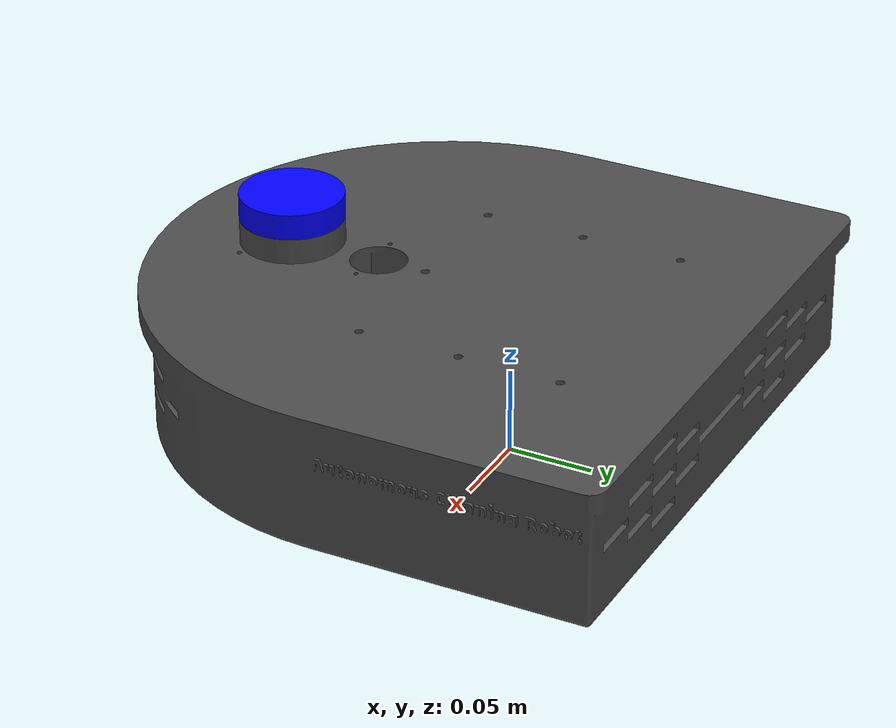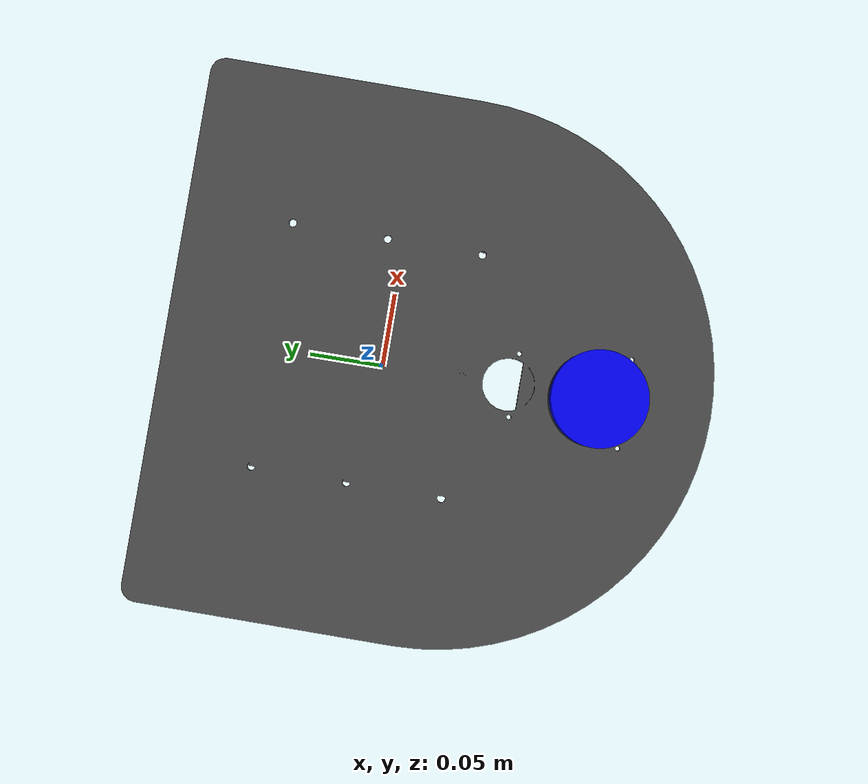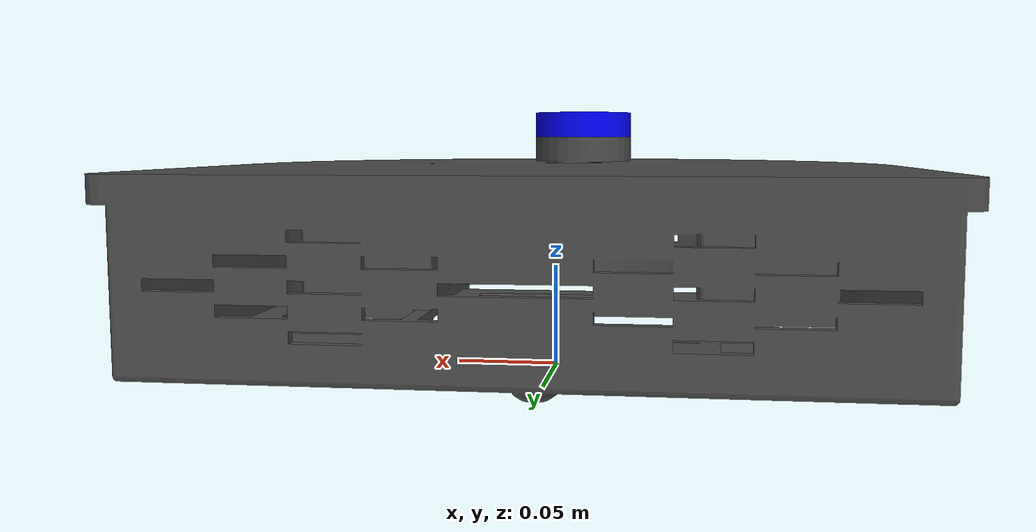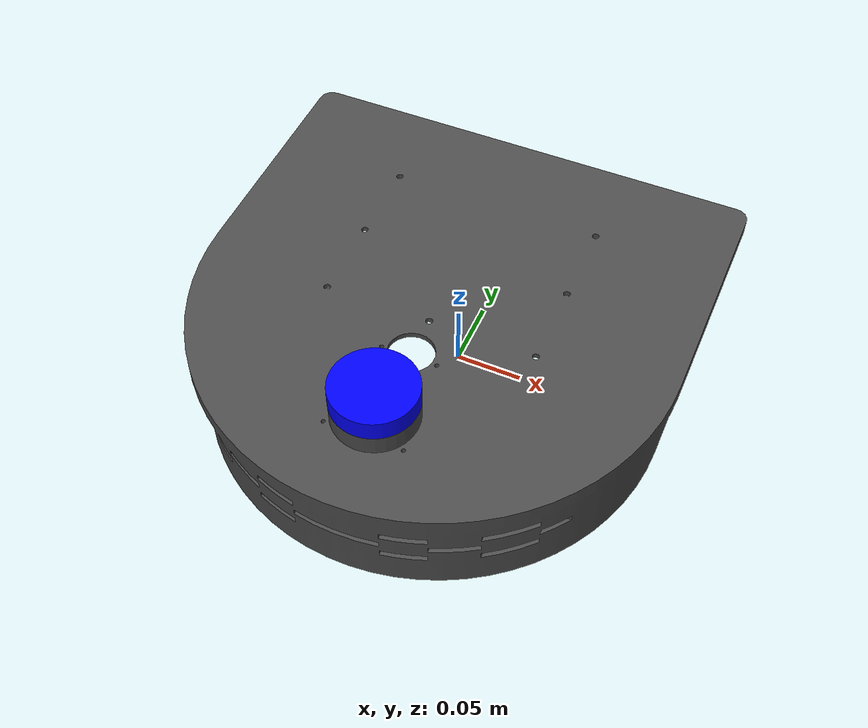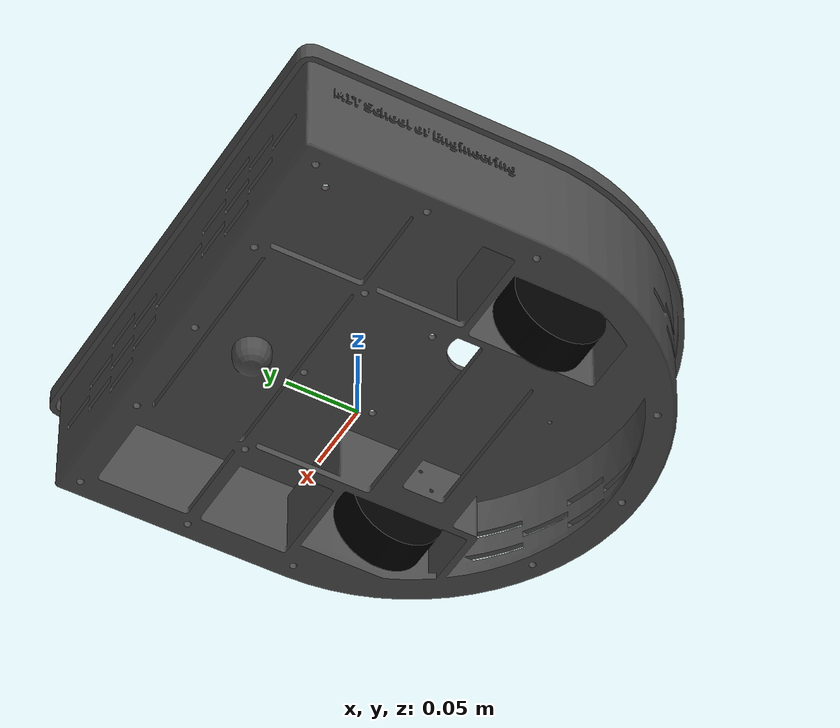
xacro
<?xml version="1.0" ?>
<robot name="mybot" xmlns:xacro="http://www.ros.org/wiki/xacro">

<xacro:property name="wheel_separation" value="0.20"/>
<xacro:property name="wheel_radius" value="0.032"/>

<xacro:include filename="$(find mybot_gazebo)/gazebo/mybot.plugins.xacro"/>
<xacro:include filename="$(find mybot_description)/urdf/materials.xacro" />
<xacro:include filename="$(find mybot_description)/urdf/mybot.trans" />
<xacro:include filename="$(find mybot_gazebo)/gazebo/mybot.gazebo" />

<link name="base_link">
  <inertial>
    <origin xyz="-2.9883252498712716e-05 -0.02466687497211163 0.0668106029991552" rpy="0 0 0"/>
    <mass value="1.2234779002641047"/>
    <inertia ixx="0.01447" iyy="0.014849" izz="0.026597" ixy="-3e-06" iyz="0.000327" ixz="-0.0"/>
  </inertial>
  <visual>
    <origin xyz="0 0 0" rpy="0 0 0"/>
    <geometry>
      <mesh filename="file://$(find mybot_description)/meshes/base_link.stl" scale="0.001 0.001 0.001"/>
    </geometry>
    <material name="grey"/>
  </visual>
  <collision>
    <origin xyz="0 0 0" rpy="0 0 0"/>
    <geometry>
      <mesh filename="file://$(find mybot_description)/meshes/base_link.stl" scale="0.001 0.001 0.001"/>
    </geometry>
  </collision>
</link>

  <joint name="base_footprint_joint" type="fixed">
        <parent link="base_link"/>
        <child link="base_footprint"/>
        <origin xyz="0 0 0" rpy="0 0 0"/>
    </joint>

    <link name="base_footprint">
    </link>

<link name="lidar">
  <inertial>
    <origin xyz="4.930463915165067e-07 2.344220053906998e-07 0.007500000000000007" rpy="0 0 0"/>
    <mass value="0.33293028146417825"/>
    <inertia ixx="8.1e-05" iyy="8.1e-05" izz="0.00015" ixy="0.0" iyz="-0.0" ixz="-0.0"/>
  </inertial>
  <visual>
    <origin xyz="7e-05 0.137825 -0.115" rpy="0 0 0"/>
    <geometry>
      <mesh filename="file://$(find mybot_description)/meshes/lidar_link_1.stl" scale="0.001 0.001 0.001"/>
    </geometry>
    <material name="blue"/>
  </visual>
  <collision>
    <origin xyz="7e-05 0.137825 -0.115" rpy="0 0 0"/>
    <geometry>
      <mesh filename="file://$(find mybot_description)/meshes/lidar_link_1.stl" scale="0.001 0.001 0.001"/>
    </geometry>
  </collision>
</link>

<link name="right_wheel_1">
  <inertial>
    <origin xyz="0.013500493046391449 2.3442200519641077e-07 6.938893903907228e-18" rpy="0 0 0"/>
    <mass value="0.7033152195930764"/>
    <inertia ixx="0.000371" iyy="0.000228" izz="0.000228" ixy="0.0" iyz="-0.0" ixz="0.0"/>
  </inertial>
  <visual>
    <origin xyz="-0.08693 0.078325 -0.034" rpy="0 0 0"/>
    <geometry>
      <mesh filename="file://$(find mybot_description)/meshes/right_wheel_1.stl" scale="0.001 0.001 0.001"/>
    </geometry>
    <material name="black"/>
  </visual>
  <collision>
    <origin xyz="-0.08693 0.078325 -0.034" rpy="0 0 0"/>
    <geometry>
      <mesh filename="file://$(find mybot_description)/meshes/right_wheel_1.stl" scale="0.001 0.001 0.001"/>
    </geometry>
  </collision>
</link>

<link name="left_wheel_1">
  <inertial>
    <origin xyz="-0.013499506953608353 2.3442200547396652e-07 6.938893903907228e-18" rpy="0 0 0"/>
    <mass value="0.7033152195930764"/>
    <inertia ixx="0.000371" iyy="0.000228" izz="0.000228" ixy="0.0" iyz="0.0" ixz="0.0"/>
  </inertial>
  <visual>
    <origin xyz="0.08707 0.078325 -0.034" rpy="0 0 0"/>
    <geometry>
      <mesh filename="file://$(find mybot_description)/meshes/left_wheel_1.stl" scale="0.001 0.001 0.001"/>
    </geometry>
    <material name="black"/>
  </visual>
  <collision>
    <origin xyz="0.08707 0.078325 -0.034" rpy="0 0 0"/>
    <geometry>
      <mesh filename="file://$(find mybot_description)/meshes/left_wheel_1.stl" scale="0.001 0.001 0.001"/>
    </geometry>
  </collision>
</link>

<joint name="lidar_joint" type="fixed">
  <origin xyz="-7e-05 -0.137825 0.115" rpy="0 0 0"/>
  <parent link="base_link"/>
  <child link="lidar"/>
</joint>

<joint name="right_wheel_joint" type="continuous">
  <origin xyz="0.08693 -0.078325 0.034" rpy="0 0 0"/>
  <parent link="base_link"/>
  <child link="right_wheel_1"/>
  <axis xyz="-1.0 -0.0 0.0"/>
</joint>

<joint name="left_wheel_joint" type="continuous">
  <origin xyz="-0.08707 -0.078325 0.034" rpy="0 0 0"/>
  <parent link="base_link"/>
  <child link="left_wheel_1"/>
  <axis xyz="-1.0 0.0 0.0"/>
</joint>

</robot>

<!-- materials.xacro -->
<robot name="mybot" xmlns:xacro="http://www.ros.org/wiki/xacro" >

<material name="silver">
  <color rgba="0.700 0.700 0.700 1.000"/>
</material>

<material name="grey">
  <color rgba="0.300 0.300 0.300 1.000"/>
</material>

<material name="black">
  <color rgba="0.000 0.000 0.000 1.000"/>
</material>

<material name="blue">
  <color rgba="0.000 0.000 1.000 1.000"/>
</material>

</robot>
